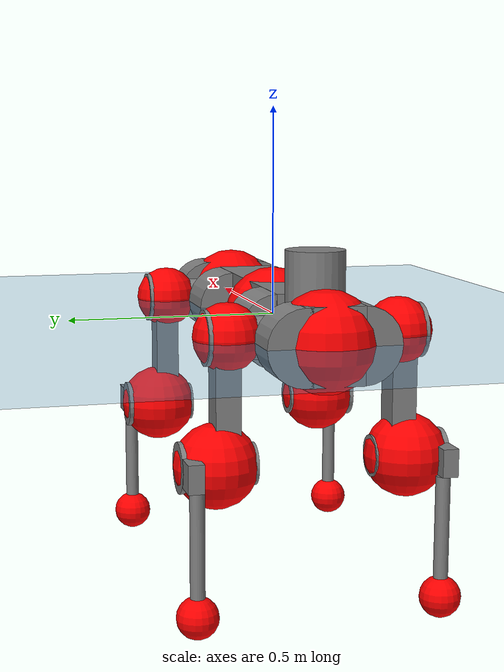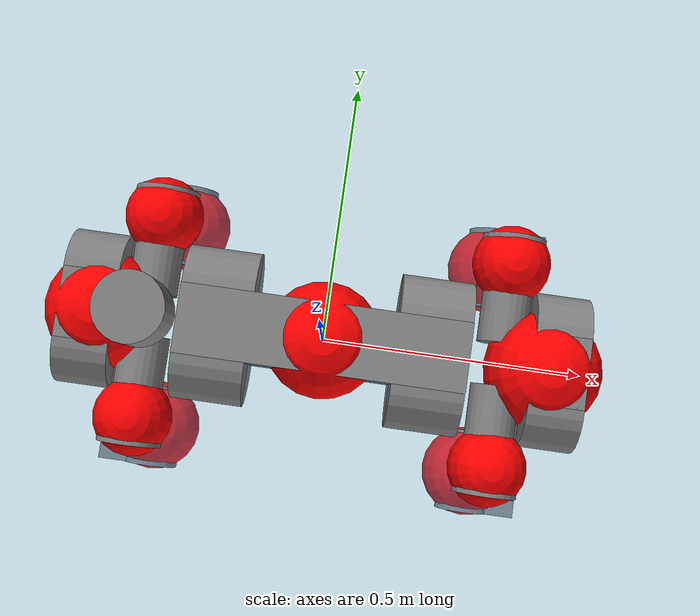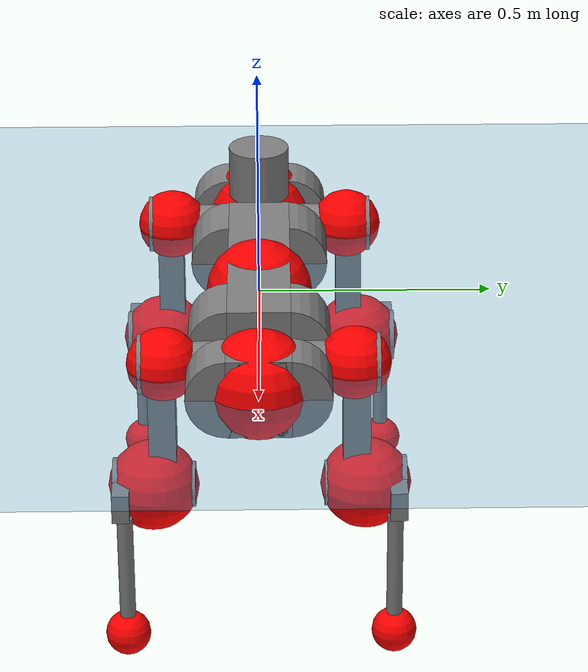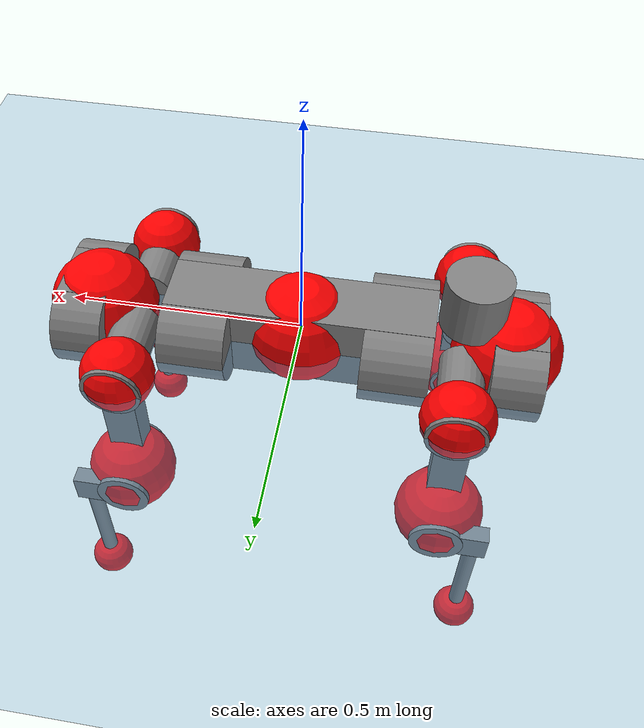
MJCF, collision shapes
<mujoco model="anymal_c">
  <compiler angle="radian" assetdir="assets" balanceinertia="true" inertiafromgeom="false"/>

  <option timestep="0.005" density="1.2" viscosity="2e-05"/>

  <size nkey="1"/>

  <visual>
    <quality shadowsize="8192"/>
    <map shadowclip="0.5"/>
  </visual>

  <default>
    <default class="/">
      <material specular="0" shininess="0.25"/>
      <geom contype="0" conaffinity="0" group="1" solref="-1000 -80"/>
      <site size="0.01 0.005 0.005" group="5"/>
      <general forcelimited="true" forcerange="-80 80" biastype="affine" gainprm="80" biasprm="0 -80 -2"/>
      <default class="anymal_c">
        <joint armature="0.01" damping="0.01" frictionloss="0.1"/>
        <default class="visual">
          <geom type="mesh" group="2"/>
          <default class="visual_zflip"/>
        </default>
        <default class="collision">
          <geom type="cylinder" group="3"/>
          <default class="foot">
            <geom size="0.03 0 0" type="sphere" condim="6" priority="1" friction="0.8 0.02 0.01" solimp="0.015 1 0.03"/>
          </default>
        </default>
      </default>
      <default class="reward_collision_sphere">
        <geom group="5" rgba="1 0 0 1"/>
      </default>
    </default>
  </default>

  <asset>
    <texture type="skybox" colorspace="auto" name="//unnamed_texture_0" builtin="gradient" rgb1="0.95 0.95 0.95" rgb2="0.95 0.95 0.95" width="100" height="600"/>
    <texture type="2d" colorspace="auto" name="texplane" builtin="checker" rgb1="0.345 0.575 0.748" rgb2="0.345 0.575 0.748" markrgb="1 1 1" width="512" height="512"/>
    <texture type="2d" colorspace="linear" name="base" file="base.png"/>
    <texture type="2d" colorspace="linear" name="top_shell" file="top_shell.png"/>
    <texture type="2d" colorspace="linear" name="bottom_shell" file="bottom_shell.png"/>
    <texture type="2d" colorspace="linear" name="remote" file="remote.png"/>
    <texture type="2d" colorspace="linear" name="hatch" file="hatch.png"/>
    <texture type="2d" colorspace="linear" name="handle" file="handle.png"/>
    <texture type="2d" colorspace="linear" name="face" file="face.png"/>
    <texture type="2d" colorspace="linear" name="battery" file="battery.png"/>
    <texture type="2d" colorspace="linear" name="lidar_cage" file="lidar_cage.png"/>
    <texture type="2d" colorspace="linear" name="depth_camera" file="depth_camera.png"/>
    <texture type="2d" colorspace="linear" name="wide_angle_camera" file="wide_angle_camera.png"/>
    <texture type="2d" colorspace="linear" name="lidar" file="lidar.png"/>
    <texture type="2d" colorspace="linear" name="drive" file="drive.png"/>
    <texture type="2d" colorspace="linear" name="hip_l" file="hip_l.png"/>
    <texture type="2d" colorspace="linear" name="shank_l" file="shank_l.png"/>
    <texture type="2d" colorspace="linear" name="foot" file="foot.png"/>
    <texture type="2d" colorspace="linear" name="thigh" file="thigh.png"/>
    <texture type="2d" colorspace="linear" name="shank_r" file="shank_r.png"/>
    <texture type="2d" colorspace="linear" name="hip_r" file="hip_r.png"/>
    <material name="MatPlane" class="/" texture="texplane" texuniform="true" texrepeat="2 2" specular="0.9" shininess="0.5"/>
    <material name="black_plastic" class="/" rgba="0.007 0.007 0.007 1"/>
    <material name="green" class="/" rgba="0.052 0.178 0.033 1"/>
    <material name="red" class="/" rgba="0.178 0.006 0.005 1"/>
    <material name="yellow" class="/" rgba="0.178 0.119 0.006 1"/>
    <material name="lwl" class="/" rgba="0.8 0.8 0.8 1"/>
    <material name="base" class="/" texture="base"/>
    <material name="top_shell" class="/" texture="top_shell"/>
    <material name="bottom_shell" class="/" texture="bottom_shell"/>
    <material name="hip_l" class="/" texture="hip_l"/>
    <material name="thigh" class="/" texture="thigh"/>
    <material name="shank_l" class="/" texture="shank_l"/>
    <material name="foot" class="/" texture="foot"/>
    <material name="hip_r" class="/" texture="hip_r"/>
    <material name="shank" class="/" texture="shank_r"/>
    <material name="hatch" class="/" texture="hatch"/>
    <material name="remote" class="/" texture="remote"/>
    <material name="handle" class="/" texture="handle"/>
    <material name="face" class="/" texture="face"/>
    <material name="depth_camera" class="/" texture="depth_camera"/>
    <material name="wide_angle_camera" class="/" texture="wide_angle_camera"/>
    <material name="battery" class="/" texture="battery"/>
    <material name="lidar_cage" class="/" texture="lidar_cage"/>
    <material name="lidar" class="/" texture="lidar"/>
    <material name="drive" class="/" texture="drive"/>
    <mesh name="base_0" class="/" file="base_0.obj"/>
    <mesh name="base_1" class="/" file="base_1.obj"/>
    <mesh name="base_2" class="/" file="base_2.obj"/>
    <mesh name="base_3" class="/" file="base_3.obj"/>
    <mesh name="base_4" class="/" file="base_4.obj"/>
    <mesh name="base_5" class="/" file="base_5.obj"/>
    <mesh name="top_shell" class="/" file="top_shell.obj"/>
    <mesh name="bottom_shell" class="/" file="bottom_shell.obj"/>
    <mesh name="remote" class="/" file="remote.obj"/>
    <mesh name="handle" class="/" file="handle.obj"/>
    <mesh name="face" class="/" file="face.obj"/>
    <mesh name="wide_angle_camera" class="/" file="wide_angle_camera.obj"/>
    <mesh name="depth_camera" class="/" file="depth_camera.obj"/>
    <mesh name="battery" class="/" file="battery.obj"/>
    <mesh name="lidar_cage" class="/" file="lidar_cage.obj"/>
    <mesh name="lidar" class="/" file="lidar.obj"/>
    <mesh name="drive" class="/" file="drive.obj"/>
    <mesh name="hip_l" class="/" file="hip_l.obj"/>
    <mesh name="thigh" class="/" file="thigh.obj"/>
    <mesh name="shank_l" class="/" file="shank_l.obj"/>
    <mesh name="foot" class="/" file="foot.obj"/>
    <mesh name="hip_r" class="/" file="hip_r.obj"/>
    <mesh name="hatch" class="/" file="hatch.obj"/>
    <mesh name="shank_r" class="/" file="shank_r.obj"/>
  </asset>

  <worldbody>
    <geom name="floor" class="/" size="100 100 0.125" type="plane" group="0" material="MatPlane"/>
    <light name="toplight_shadow" class="/" pos="0 0 5" dir="0.0990148 0.0990148 -0.990148" type="directional" ambient="0.04 0.04 0.04" diffuse="0.55 0.55 0.55" specular="0.12 0.12 0.12"/>
    <light name="toplight_fill" class="/" pos="0 0 5" dir="0.0990148 0.0990148 -0.990148" type="directional" castshadow="false" ambient="0.04 0.04 0.04" diffuse="0.3 0.3 0.3" specular="0.08 0.08 0.08"/>
    <body name="trunk" childclass="anymal_c" pos="0.000117082 -1.47333e-05 -0.000851711" quat="1 -5.07354e-06 3.29709e-05 3.46269e-05">
      <inertial pos="0.0026685 0.00221257 0.0499333" quat="0.500053 0.499981 0.499963 0.500003" mass="16.7664" diaginertia="0.514794 0.401483 0.218699"/>
      <joint name="//unnamed_joint_0" type="free" armature="0" damping="0" frictionloss="0"/>
      <geom name="//unnamed_geom_1" class="visual" material="green" mesh="base_0"/>
      <geom name="//unnamed_geom_2" class="visual" material="yellow" mesh="base_1"/>
      <geom name="//unnamed_geom_3" class="visual" material="red" mesh="base_2"/>
      <geom name="//unnamed_geom_4" class="visual" material="black_plastic" mesh="base_3"/>
      <geom name="//unnamed_geom_5" class="visual" material="lwl" mesh="base_4"/>
      <geom name="//unnamed_geom_6" class="visual" material="base" mesh="base_5"/>
      <geom name="trunk_1" class="collision" size="0.27733 0.0669418 0.0860681" type="box"/>
      <geom name="trunk_2" class="collision" size="0.0860681 0.0693326" pos="0.207238 0.0639957 0" quat="0.707107 0 0.707107 0"/>
      <geom name="trunk_3" class="collision" size="0.0860681 0.0693326" pos="-0.207238 0.0639957 0" quat="0.707107 0 0.707107 0"/>
      <geom name="trunk_4" class="collision" size="0.0860681 0.0693326" pos="0.207238 -0.0639957 0" quat="0.707107 0 0.707107 0"/>
      <geom name="trunk_5" class="collision" size="0.0860681 0.0693326" pos="-0.207238 -0.0639957 0" quat="0.707107 0 0.707107 0"/>
      <geom name="//unnamed_geom_12" class="visual" material="top_shell" mesh="top_shell"/>
      <geom name="//unnamed_geom_13" class="visual" material="bottom_shell" mesh="bottom_shell"/>
      <geom name="//unnamed_geom_14" class="visual" material="remote" mesh="remote"/>
      <geom name="//unnamed_geom_15" class="visual" material="handle" mesh="handle"/>
      <geom name="//unnamed_geom_16" class="visual" pos="0.394943 0 0" quat="1 0 0 0" material="face" mesh="face"/>
      <geom name="trunk_6" class="collision" size="0.0525971 0.0669418 0.0860681" pos="0.447348 0 0" type="box"/>
      <geom name="//unnamed_geom_18" class="collision" size="0.0860681 0.0525971" pos="0.447348 0.0639957 0" quat="0.707107 0 0.707107 0"/>
      <geom name="//unnamed_geom_19" class="collision" size="0.0860681 0.0525971" pos="0.447348 -0.0639957 0" quat="0.707107 0 0.707107 0"/>
      <geom name="//unnamed_geom_20" class="visual" pos="0.439871 0 -0.0296282" quat="0.965926 0 0.258819 0" material="depth_camera" mesh="depth_camera"/>
      <geom name="//unnamed_geom_21" class="visual" pos="0.488796 0 0.0149983" material="wide_angle_camera" mesh="wide_angle_camera"/>
      <geom name="//unnamed_geom_22" class="visual_zflip" pos="-0.394943 0 0" quat="0 0 0 1" material="face" mesh="face"/>
      <geom name="trunk_7" class="collision" size="0.0525971 0.0669418 0.0860681" pos="-0.447348 0 0" quat="0 0 0 1" type="box"/>
      <geom name="//unnamed_geom_24" class="collision" size="0.0860681 0.0525971" pos="-0.447348 -0.0639957 0" quat="0 -0.707107 0 0.707107"/>
      <geom name="//unnamed_geom_25" class="collision" size="0.0860681 0.0525971" pos="-0.447348 0.0639957 0" quat="0 -0.707107 0 0.707107"/>
      <geom name="//unnamed_geom_26" class="visual" pos="-0.439871 0 -0.0296282" quat="0 -0.258819 0 0.965926" material="depth_camera" mesh="depth_camera"/>
      <geom name="//unnamed_geom_27" class="visual_zflip" pos="-0.488796 0 0.0149983" quat="0 0 0 1" material="wide_angle_camera" mesh="wide_angle_camera"/>
      <geom name="//unnamed_geom_28" class="visual" material="battery" mesh="battery"/>
      <geom name="//unnamed_geom_29" class="visual" pos="0 0.0693972 0.028732" quat="0.683013 -0.183013 0.183013 0.683013" material="depth_camera" mesh="depth_camera"/>
      <geom name="//unnamed_geom_30" class="visual" pos="0 -0.0693972 0.028732" quat="0.683013 0.183013 0.183013 -0.683013" material="depth_camera" mesh="depth_camera"/>
      <geom name="//unnamed_geom_31" class="visual" pos="-0.346826 0 0.073639" quat="1 0 0 0" material="lidar_cage" mesh="lidar_cage"/>
      <geom name="trunk_8" class="collision" size="0.0669418 0.0573787" pos="-0.346826 0 0.133753"/>
      <geom name="//unnamed_geom_33" class="visual" pos="-0.346826 -1.51624e-05 0.142469" quat="0.707107 0 0 -0.707107" material="lidar" mesh="lidar"/>
      <geom name="//unnamed_geom_34" class="visual" pos="0.28575 0.0951105 -1.51226e-09" quat="0.258819 0.965926 0 0" material="drive" mesh="drive"/>
      <geom name="//unnamed_geom_35" class="visual" pos="0.28575 -0.0951105 1.51226e-09" quat="0.258819 -0.965926 0 0" material="drive" mesh="drive"/>
      <geom name="//unnamed_geom_36" class="visual" pos="-0.28575 0.0951105 1.51226e-09" quat="0 0 0.965926 -0.258819" material="drive" mesh="drive"/>
      <geom name="//unnamed_geom_37" class="visual" pos="-0.28575 -0.0951105 -1.51226e-09" quat="0 0 -0.965926 -0.258819" material="drive" mesh="drive"/>
      <geom name="//unnamed_geom_38" class="visual" pos="0.110527 0 0.0731381" quat="1 0 0 0" material="hatch" mesh="hatch"/>
      <geom name="//unnamed_geom_39" class="reward_collision_sphere" size="0.114757"/>
      <geom name="//unnamed_geom_40" class="reward_collision_sphere" size="0.114757" pos="0.428768 0 0"/>
      <geom name="//unnamed_geom_41" class="reward_collision_sphere" size="0.114757" pos="-0.428768 0 0"/>
      <site name="imu" pos="0.231856 0.00872791 0.0413558" size="0.00956312"/>
      <camera name="track" pos="0 -1.82845 0" quat="0.707107 0.707107 0 0" mode="trackcom"/>
      <camera name="ego_camera" pos="0.428768 0 -0.0400757" quat="-0.5 -0.5 0.5 0.5"/>
      <body name="LF_HIP" pos="0.286376 0.0953709 0.000358212" quat="0.259269 0.965805 -5.00864e-05 -0.000321673">
        <inertial pos="0.0522324 -0.0136072 -0.00774711" quat="-0.127614 0.709782 -0.135479 0.67939" mass="2.4899" diaginertia="0.00465837 0.0031934 0.00335973"/>
        <joint name="LF_HAA" pos="0 0 0" axis="0.999999 -0.00156034 0.00057169" range="-0.702484 0.491414" armature="0.00965018" damping="0.00844403" frictionloss="0.087643"/>
        <geom name="//unnamed_geom_42" class="visual" pos="0 -8.89594e-05 1.46115e-05" quat="0.258819 -0.965926 0 0" material="hip_l" mesh="hip_l"/>
        <geom name="//unnamed_geom_43" class="visual" pos="0.0570738 -0.0686801 -0.0403009" quat="0.183013 -0.683013 0.683013 0.183013" material="drive" mesh="drive"/>
        <geom name="//unnamed_geom_44" class="collision" size="0.0478156 0.0669418" pos="0.0570738 -0.0109339 -0.00691806" quat="-0.353553 -0.612372 0.612372 -0.353553"/>
        <body name="LF_THIGH" pos="0.0575522 -0.066128 -0.0423513" quat="0.183252 -0.683094 0.682947 0.182715">
          <inertial pos="0.0296173 0.000239559 -0.245833" quat="0.993146 -0.00408613 -0.0800554 0.0850667" mass="2.59093" diaginertia="0.0238097 0.0189193 0.00399103"/>
          <joint name="LF_HFE" pos="0 0 0" axis="0.999998 -0.00130469 0.00115244" stiffness="0.00230053" range="-3.15571 3.12175" armature="0.00928363" damping="0.0088211" frictionloss="0.0979958"/>
          <geom name="//unnamed_geom_45" class="visual" pos="0.000767862 1.20997e-06 0" quat="0.707107 0 0 -0.707107" material="thigh" mesh="thigh"/>
          <geom name="//unnamed_geom_46" class="collision" size="0.0621603 0.0382525" pos="0.0381127 0 0" quat="0.5 0.5 -0.5 -0.5"/>
          <geom name="//unnamed_geom_47" class="collision" size="0.0358617 0.0286894 0.13514" pos="0.0285846 0 -0.141581" quat="0.707107 0 0 -0.707107" type="box"/>
          <geom name="//unnamed_geom_48" class="visual" pos="0.0955677 0 -0.285539" quat="1 0 0 0" material="drive" mesh="drive"/>
          <geom name="//unnamed_geom_49" class="collision" size="0.0478156 0.0669418" pos="0.0288704 0 -0.285539" quat="0.707107 0 0.707107 0"/>
          <geom name="//unnamed_geom_50" class="reward_collision_sphere" size="0.0765049" pos="0.0238205 0 0"/>
          <body name="LF_SHANK" pos="0.0963396 3.7071e-05 -0.285119" quat="0.999999 0.000798831 -0.000311282 0.000797687">
            <inertial pos="0.0046672 -0.0560359 -0.0810645" quat="0.992947 -0.115893 -0.0011979 -0.0249551" mass="0.514098" diaginertia="0.00799301 0.00577173 0.00112207"/>
            <joint name="LF_KFE" pos="0 0 0" axis="0.999999 0.00135588 -0.000770777" range="-3.13482 3.14404" armature="0.00992296" damping="0.0170883" frictionloss="0.0914548"/>
            <geom name="//unnamed_geom_51" class="visual" pos="0.000250383 0.00133506 0" quat="0.707107 0 0 -0.707107" material="shank_l" mesh="shank_l"/>
            <geom name="LF_kfe_act" class="collision" size="0.0573787 0.0191262" pos="0.0190564 0 0" quat="0.5 0.5 -0.5 -0.5"/>
            <geom name="//unnamed_geom_53" class="collision" size="0.054987 0.0322755 0.0181699" pos="0.0190564 -0.052567 0" quat="0.5 0.5 -0.5 -0.5" type="box"/>
            <geom name="//unnamed_geom_54" class="visual" pos="0.0124342 -0.0799758 -0.338609" quat="0.382683 0 0 -0.92388" material="foot" mesh="foot"/>
            <geom name="LF_calf" class="collision" size="0.0167355 0.135081" pos="0.0124343 -0.0804061 -0.169305" quat="0.707107 0 0 -0.707107"/>
            <geom name="LF_foot" class="foot" size="0.0309328" pos="0.0124343 -0.0804061 -0.316067" quat="0.707107 0 0 -0.707107"/>
            <geom name="//unnamed_geom_57" class="reward_collision_sphere" size="0.0956312" pos="-0.0476409 0 0"/>
            <geom name="//unnamed_geom_58" class="reward_collision_sphere" size="0.0478156" pos="0.0124343 -0.0804061 -0.316067"/>
            <site name="LF_foot" class="foot" pos="0.0124343 -0.0804061 -0.316067" quat="0.707107 0 0 -0.707107" size="0.00956312"/>
          </body>
        </body>
      </body>
      <body name="RF_HIP" pos="0.285316 -0.0956008 0.000444354" quat="0.258842 -0.965919 -0.000612114 -6.36834e-05">
        <inertial pos="0.0542222 0.0142266 -0.00814519" quat="0.134872 0.679736 0.127632 0.709563" mass="2.33942" diaginertia="0.0044529 0.00308192 0.00332076"/>
        <joint name="RF_HAA" pos="0 0 0" axis="0.999994 -0.00297492 -0.00162186" range="-0.468339 0.678804" armature="0.00968074" damping="0.00453066" frictionloss="0.0939169"/>
        <geom name="//unnamed_geom_59" class="visual" pos="0 8.89586e-05 1.46115e-05" quat="0.258819 0.965926 0 0" material="hip_r" mesh="hip_r"/>
        <geom name="//unnamed_geom_60" class="visual" pos="0.0570738 0.0686801 -0.0403009" quat="0.183013 0.683013 0.683013 -0.183013" material="drive" mesh="drive"/>
        <geom name="//unnamed_geom_61" class="collision" size="0.0478156 0.0669418" pos="0.0570738 0.0109339 -0.00691806" quat="-0.353553 0.612372 0.612372 0.353553"/>
        <body name="RF_THIGH" pos="0.0598631 0.0661639 -0.0423378" quat="0.182924 0.682891 0.683265 -0.182613">
          <inertial pos="0.0294482 -0.000174621 -0.245855" quat="0.99274 -0.00499615 -0.0809159 0.0888495" mass="2.7875" diaginertia="0.0238298 0.0198921 0.00433432"/>
          <joint name="RF_HFE" pos="0 0 0" axis="0.999936 -8.72261e-05 0.0113064" stiffness="0.00579615" range="-3.09208 3.09541" armature="0.00949247" damping="0.00106603" frictionloss="0.0990831"/>
          <geom name="//unnamed_geom_62" class="visual" pos="0.000767862 1.20997e-06 0" quat="0.707107 0 0 -0.707107" material="thigh" mesh="thigh"/>
          <geom name="//unnamed_geom_63" class="collision" size="0.0621603 0.0382525" pos="0.0381127 0 0" quat="0.5 0.5 0.5 0.5"/>
          <geom name="//unnamed_geom_64" class="collision" size="0.0358617 0.0286894 0.13514" pos="0.0285846 0 -0.141581" quat="0.707107 0 0 0.707107" type="box"/>
          <geom name="//unnamed_geom_65" class="visual" pos="0.0955677 0 -0.285539" quat="1 0 0 0" material="drive" mesh="drive"/>
          <geom name="//unnamed_geom_66" class="collision" size="0.0478156 0.0669418" pos="0.0288704 0 -0.285539" quat="0.707107 0 0.707107 0"/>
          <geom name="//unnamed_geom_67" class="reward_collision_sphere" size="0.0765049" pos="0.0238205 0 0"/>
          <body name="RF_SHANK" pos="0.0975934 -0.000853322 -0.285763" quat="1 -4.36399e-05 -5.47815e-05 -0.000129098">
            <inertial pos="0.0064425 0.0567266 -0.0781755" quat="0.993181 0.113249 0.00255155 0.0275608" mass="0.498174" diaginertia="0.00798549 0.00590223 0.00113081"/>
            <joint name="RF_KFE" pos="0 0 0" axis="0.999904 -0.00217087 0.0136951" range="-3.15545 3.10299" armature="0.00965773" damping="0.00907537" frictionloss="0.0835205"/>
            <geom name="//unnamed_geom_68" class="visual" pos="0.000250382 -0.00133505 0" quat="0.707107 0 0 0.707107" material="shank" mesh="shank_r"/>
            <geom name="RF_kfe_act" class="collision" size="0.0573787 0.0191262" pos="0.0190564 0 0" quat="0.5 0.5 0.5 0.5"/>
            <geom name="//unnamed_geom_70" class="collision" size="0.054987 0.0322755 0.0181699" pos="0.0190564 0.052567 0" quat="0.5 0.5 0.5 0.5" type="box"/>
            <geom name="//unnamed_geom_71" class="visual" pos="0.0124343 0.0799758 -0.338609" quat="0.382683 0 0 0.92388" material="foot" mesh="foot"/>
            <geom name="RF_calf" class="collision" size="0.0167355 0.135081" pos="0.0124343 0.0804061 -0.169305" quat="0.707107 0 0 0.707107"/>
            <geom name="RF_foot" class="foot" size="0.029297" pos="0.0124343 0.0804061 -0.316067" quat="0.707107 0 0 0.707107"/>
            <geom name="//unnamed_geom_74" class="reward_collision_sphere" size="0.0956312" pos="-0.0476409 0 0"/>
            <geom name="//unnamed_geom_75" class="reward_collision_sphere" size="0.0478156" pos="0.0124343 0.0804061 -0.316067"/>
            <site name="RF_foot" class="foot" pos="0.0124343 0.0804061 -0.316067" quat="0.707107 0 0 0.707107" size="0.00956312"/>
          </body>
        </body>
      </body>
      <body name="LH_HIP" pos="-0.284836 0.0964675 0.000426449" quat="1.24654e-06 -1.74261e-06 0.965926 -0.25882">
        <inertial pos="0.0546772 0.011956 -0.00847109" quat="0.140943 0.686272 0.122509 0.702963" mass="2.35621" diaginertia="0.00454505 0.00316313 0.00335672"/>
        <joint name="LH_HAA" pos="0 0 0" axis="0.999996 -0.000184947 0.00278419" range="-0.506512 0.735686" armature="0.00961747" damping="0.00704663" frictionloss="0.0937301"/>
        <geom name="//unnamed_geom_76" class="visual" pos="0 8.89586e-05 1.46115e-05" quat="-0.258819 -0.965926 0 0" material="hip_r" mesh="hip_r"/>
        <geom name="//unnamed_geom_77" class="visual" pos="0.0570738 0.0686801 -0.0403009" quat="0.183013 0.683013 0.683013 -0.183013" material="drive" mesh="drive"/>
        <geom name="//unnamed_geom_78" class="collision" size="0.0478156 0.0669418" pos="0.0570738 0.0109339 -0.00691806" quat="-0.353553 0.612372 0.612372 0.353553"/>
        <body name="LH_THIGH" pos="0.0563074 0.0646379 -0.0420232" quat="0.183047 0.683082 0.682952 -0.182947">
          <inertial pos="0.0304675 -0.000928208 -0.245947" quat="0.992211 -0.00680826 -0.0839581 0.0917672" mass="2.70753" diaginertia="0.0244956 0.0196641 0.00431091"/>
          <joint name="LH_HFE" pos="0 0 0" axis="0.999996 -0.00273118 0.0010304" range="-3.14056 3.13898" armature="0.00951093" damping="0.00923757" frictionloss="0.0949909"/>
          <geom name="//unnamed_geom_79" class="visual" pos="0.000767862 1.20997e-06 0" quat="0.707107 0 0 -0.707107" material="thigh" mesh="thigh"/>
          <geom name="//unnamed_geom_80" class="collision" size="0.0621603 0.0382525" pos="0.0381127 0 0" quat="0.5 0.5 -0.5 -0.5"/>
          <geom name="//unnamed_geom_81" class="collision" size="0.0358617 0.0286894 0.13514" pos="0.0285846 0 -0.141581" quat="0.707107 0 0 -0.707107" type="box"/>
          <geom name="//unnamed_geom_82" class="visual" pos="0.0955677 0 -0.285539" quat="1 0 0 0" material="drive" mesh="drive"/>
          <geom name="//unnamed_geom_83" class="collision" size="0.0478156 0.0669418" pos="0.0288704 0 -0.285539" quat="0.707107 0 0.707107 0"/>
          <geom name="//unnamed_geom_84" class="reward_collision_sphere" size="0.0765049" pos="0.0238205 0 0"/>
          <body name="LH_SHANK" pos="0.0968225 -0.000649877 -0.285881" quat="1 0.000239124 7.63688e-05 -0.0005538">
            <inertial pos="0.00649796 0.0569513 -0.0814296" quat="0.992915 0.116099 -0.0011265 0.0252883" mass="0.518006" diaginertia="0.00834418 0.0062513 0.00120351"/>
            <joint name="LH_KFE" pos="0 0 0" axis="0.999993 0.00333558 -0.00168685" stiffness="0.000514799" range="-3.1475 3.08889" armature="0.00941189" damping="0.0148751" frictionloss="0.092883"/>
            <geom name="//unnamed_geom_85" class="visual" pos="0.000250382 -0.00133505 0" quat="-0.707107 0 0 -0.707107" material="shank" mesh="shank_r"/>
            <geom name="LH_kfe_act" class="collision" size="0.0573787 0.0191262" pos="0.0190564 0 0" quat="0.5 0.5 -0.5 -0.5"/>
            <geom name="//unnamed_geom_87" class="collision" size="0.054987 0.0322755 0.0181699" pos="0.0190564 0.052567 0" quat="0.5 0.5 -0.5 -0.5" type="box"/>
            <geom name="//unnamed_geom_88" class="visual" pos="0.0124343 0.0799758 -0.338609" quat="-0.382683 0 0 -0.92388" material="foot" mesh="foot"/>
            <geom name="LH_calf" class="collision" size="0.0167355 0.135081" pos="0.0124343 0.0804061 -0.169305" quat="0.707107 0 0 -0.707107"/>
            <geom name="LH_foot" class="foot" size="0.0274269" pos="0.0124343 0.0804061 -0.316067" quat="0.707107 0 0 -0.707107"/>
            <geom name="//unnamed_geom_91" class="reward_collision_sphere" size="0.0956312" pos="-0.0476409 0 0"/>
            <geom name="//unnamed_geom_92" class="reward_collision_sphere" size="0.0478156" pos="0.0124343 0.0804061 -0.316067"/>
            <site name="LH_foot" class="foot" pos="0.0124343 0.0804061 -0.316067" quat="0.707107 0 0 -0.707107" size="0.00956312"/>
          </body>
        </body>
      </body>
      <body name="RH_HIP" pos="-0.285448 -0.0940182 -0.000289604" quat="-0.000171276 0.000385789 -0.965682 -0.259726">
        <inertial pos="0.0533716 -0.0146665 -0.00780257" quat="-0.132374 0.71726 -0.13678 0.670303" mass="2.44582" diaginertia="0.00458662 0.00314336 0.00330665"/>
        <joint name="RH_HAA" pos="0 0 0" axis="0.999991 0.00296109 -0.00291448" range="-0.760244 0.474422" armature="0.00855827" damping="0.011218" frictionloss="0.0969385"/>
        <geom name="//unnamed_geom_93" class="visual" pos="0 -8.89594e-05 1.46115e-05" quat="-0.258819 0.965926 0 0" material="hip_l" mesh="hip_l"/>
        <geom name="//unnamed_geom_94" class="visual" pos="0.0570738 -0.0686801 -0.0403009" quat="-0.183013 0.683013 -0.683013 -0.183013" material="drive" mesh="drive"/>
        <geom name="//unnamed_geom_95" class="collision" size="0.0478156 0.0669418" pos="0.0570738 -0.0109339 -0.00691806" quat="0.353553 0.612372 -0.612372 0.353553"/>
        <body name="RH_THIGH" pos="0.0568465 -0.0659078 -0.0443915" quat="-0.183021 0.682961 -0.683041 -0.183095">
          <inertial pos="0.0295557 0.00249915 -0.246015" quat="0.993854 -0.00396413 -0.0743997 0.0818733" mass="2.59321" diaginertia="0.0228656 0.0185113 0.00406343"/>
          <joint name="RH_HFE" pos="0 0 0" axis="0.999995 0.00288738 -0.00159289" stiffness="0.000491254" range="-3.15779 3.10026" armature="0.0108913" damping="0.0091221" frictionloss="0.0907307"/>
          <geom name="//unnamed_geom_96" class="visual" pos="0.000767862 1.20997e-06 0" quat="0.707107 0 0 -0.707107" material="thigh" mesh="thigh"/>
          <geom name="//unnamed_geom_97" class="collision" size="0.0621603 0.0382525" pos="0.0381127 0 0" quat="0.5 0.5 0.5 0.5"/>
          <geom name="//unnamed_geom_98" class="collision" size="0.0358617 0.0286894 0.13514" pos="0.0285846 0 -0.141581" quat="0.707107 0 0 0.707107" type="box"/>
          <geom name="//unnamed_geom_99" class="visual" pos="0.0955677 0 -0.285539" quat="1 0 0 0" material="drive" mesh="drive"/>
          <geom name="//unnamed_geom_100" class="collision" size="0.0478156 0.0669418" pos="0.0288704 0 -0.285539" quat="0.707107 0 0.707107 0"/>
          <geom name="//unnamed_geom_101" class="reward_collision_sphere" size="0.0765049" pos="0.0238205 0 0"/>
          <body name="RH_SHANK" pos="0.0947483 -0.000611328 -0.286579" quat="1 -0.000205547 0.000527464 -6.50234e-05">
            <inertial pos="0.00484211 -0.0555681 -0.0810714" quat="0.992225 -0.118827 -0.00262747 -0.0369021" mass="0.504071" diaginertia="0.00799302 0.00601138 0.00117292"/>
            <joint name="RH_KFE" pos="0 0 0" axis="0.999985 -0.00538451 0.000773137" stiffness="0.00591652" range="-3.09363 3.17462" armature="0.0093969" damping="0.00851767" frictionloss="0.0958596"/>
            <geom name="//unnamed_geom_102" class="visual" pos="0.000250383 0.00133506 0" quat="0.707107 0 0 -0.707107" material="shank_l" mesh="shank_l"/>
            <geom name="RH_kfe_act" class="collision" size="0.0573787 0.0191262" pos="0.0190564 0 0" quat="0.5 0.5 0.5 0.5"/>
            <geom name="//unnamed_geom_104" class="collision" size="0.054987 0.0322755 0.0181699" pos="0.0190564 -0.052567 0" quat="0.5 0.5 0.5 0.5" type="box"/>
            <geom name="//unnamed_geom_105" class="visual" pos="0.0124342 -0.0799758 -0.338609" quat="0.382683 0 0 -0.92388" material="foot" mesh="foot"/>
            <geom name="RH_calf" class="collision" size="0.0167355 0.135081" pos="0.0124343 -0.0804061 -0.169305" quat="0.707107 0 0 0.707107"/>
            <geom name="RH_foot" class="foot" size="0.0246758" pos="0.0124343 -0.0804061 -0.316067" quat="0.707107 0 0 0.707107"/>
            <geom name="//unnamed_geom_108" class="reward_collision_sphere" size="0.0956312" pos="-0.0476409 0 0"/>
            <geom name="//unnamed_geom_109" class="reward_collision_sphere" size="0.0478156" pos="0.0124343 -0.0804061 -0.316067"/>
            <site name="RH_foot" class="foot" pos="0.0124343 -0.0804061 -0.316067" quat="0.707107 0 0 0.707107" size="0.00956312"/>
          </body>
        </body>
      </body>
    </body>
  </worldbody>

  <contact>
    <pair class="/" geom1="floor" geom2="LF_foot" name="//unnamed_contact_0"/>
    <pair class="/" geom1="floor" geom2="RF_foot" name="//unnamed_contact_1"/>
    <pair class="/" geom1="floor" geom2="LH_foot" name="//unnamed_contact_2"/>
    <pair class="/" geom1="floor" geom2="RH_foot" name="//unnamed_contact_3"/>
  </contact>

  <actuator>
    <general name="LF_HAA" class="/" joint="LF_HAA" forcerange="-78.2622 78.2622" gainprm="81.3233" biasprm="0 -81.3233 -1.91774"/>
    <general name="LF_HFE" class="/" joint="LF_HFE" forcerange="-69.39 69.39" gainprm="81.3233" biasprm="0 -81.3233 -1.91774"/>
    <general name="LF_KFE" class="/" joint="LF_KFE" forcerange="-74.506 74.506" gainprm="81.3233" biasprm="0 -81.3233 -1.91774"/>
    <general name="RF_HAA" class="/" joint="RF_HAA" forcerange="-79.7865 79.7865" gainprm="81.3233" biasprm="0 -81.3233 -1.91774"/>
    <general name="RF_HFE" class="/" joint="RF_HFE" forcerange="-75.2192 75.2192" gainprm="81.3233" biasprm="0 -81.3233 -1.91774"/>
    <general name="RF_KFE" class="/" joint="RF_KFE" forcerange="-78.826 78.826" gainprm="81.3233" biasprm="0 -81.3233 -1.91774"/>
    <general name="LH_HAA" class="/" joint="LH_HAA" forcerange="-78.6784 78.6784" gainprm="81.3233" biasprm="0 -81.3233 -1.91774"/>
    <general name="LH_HFE" class="/" joint="LH_HFE" forcerange="-76.5699 76.5699" gainprm="81.3233" biasprm="0 -81.3233 -1.91774"/>
    <general name="LH_KFE" class="/" joint="LH_KFE" forcerange="-79.0348 79.0348" gainprm="81.3233" biasprm="0 -81.3233 -1.91774"/>
    <general name="RH_HAA" class="/" joint="RH_HAA" forcerange="-69.8028 69.8028" gainprm="81.3233" biasprm="0 -81.3233 -1.91774"/>
    <general name="RH_HFE" class="/" joint="RH_HFE" forcerange="-77.1378 77.1378" gainprm="81.3233" biasprm="0 -81.3233 -1.91774"/>
    <general name="RH_KFE" class="/" joint="RH_KFE" forcerange="-78.2697 78.2697" gainprm="81.3233" biasprm="0 -81.3233 -1.91774"/>
  </actuator>

  <sensor>
    <gyro site="imu" name="imu_angular_velocity"/>
    <velocimeter site="imu" name="imu_linear_velocity"/>
    <framelinvel objtype="site" objname="LF_foot" name="LF_foot_global_linear_velocity"/>
    <framelinvel objtype="site" objname="RF_foot" name="RF_foot_global_linear_velocity"/>
    <framelinvel objtype="site" objname="LH_foot" name="LH_foot_global_linear_velocity"/>
    <framelinvel objtype="site" objname="RH_foot" name="RH_foot_global_linear_velocity"/>
  </sensor>

  <keyframe>
    <key name="home" qpos="0 0 0.55 1 0 0 0 0 0.4 -0.8 0 -0.4 0.8 0 -0.4 0.8 0 0.4 -0.8"/>
  </keyframe>
</mujoco>
